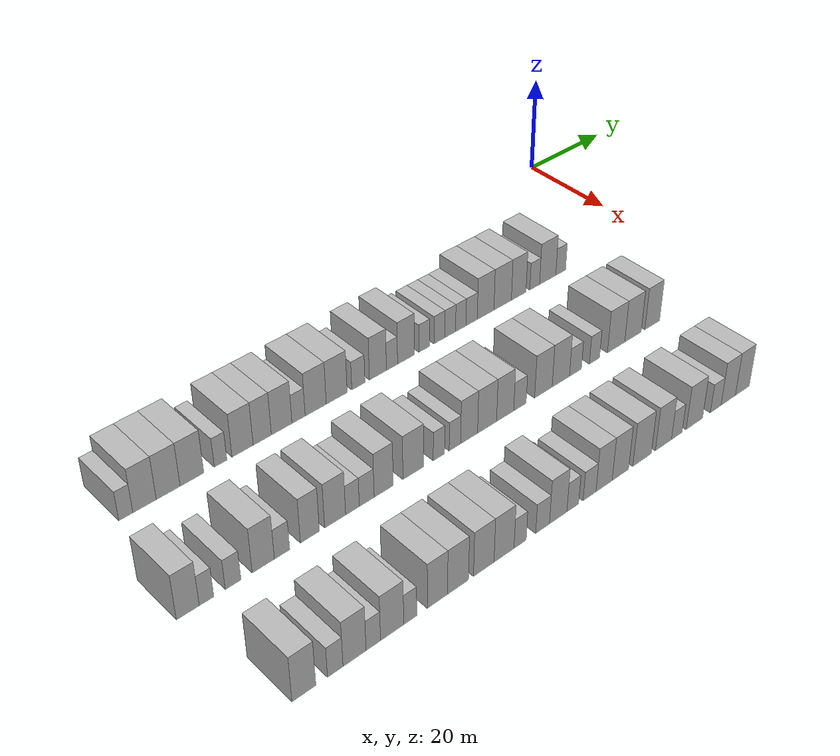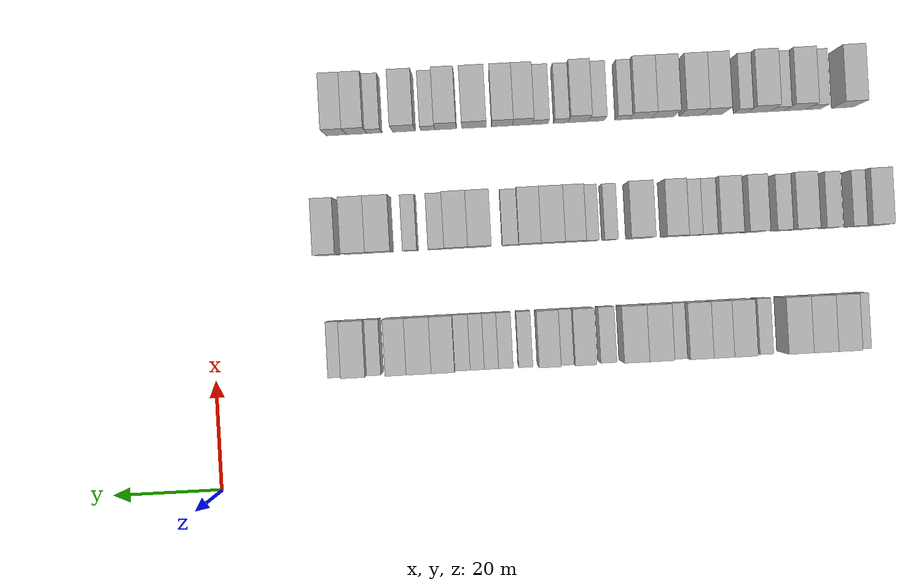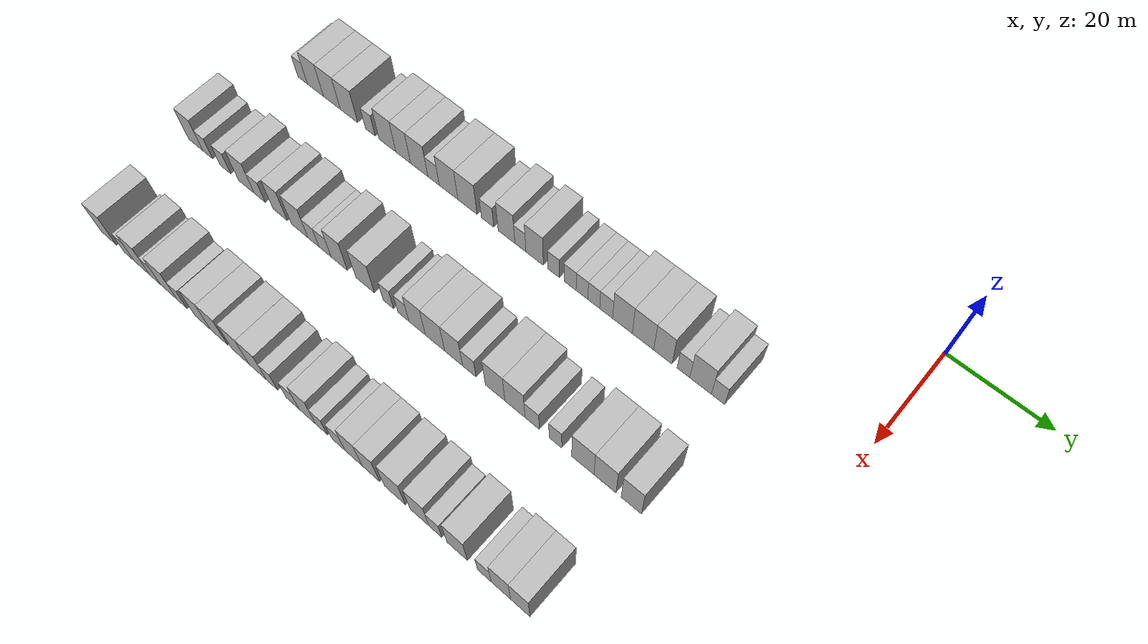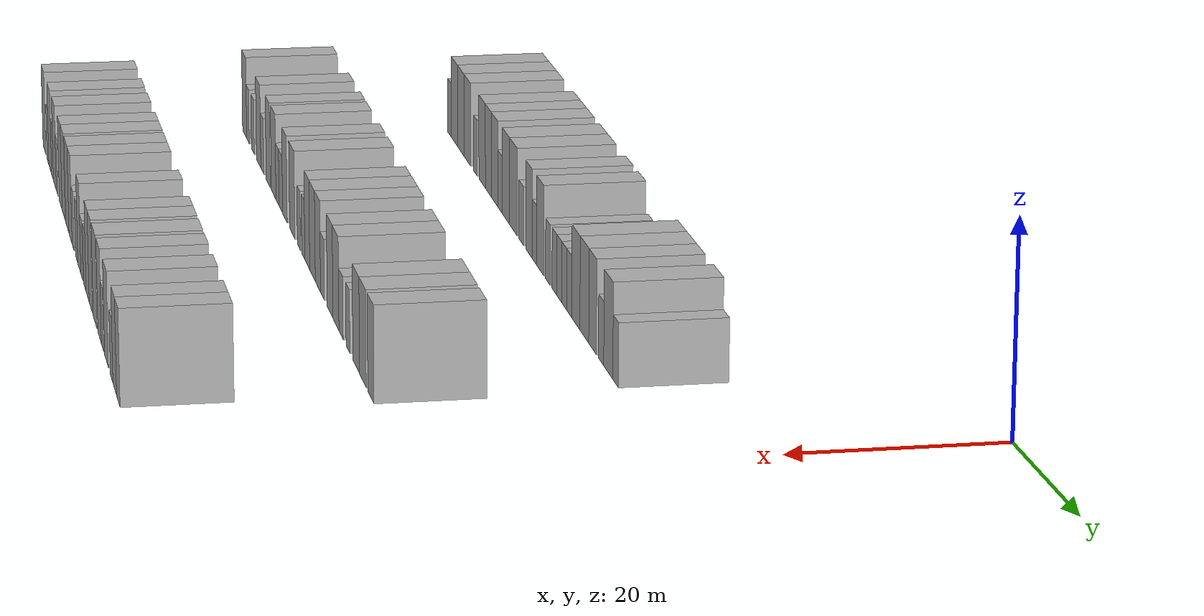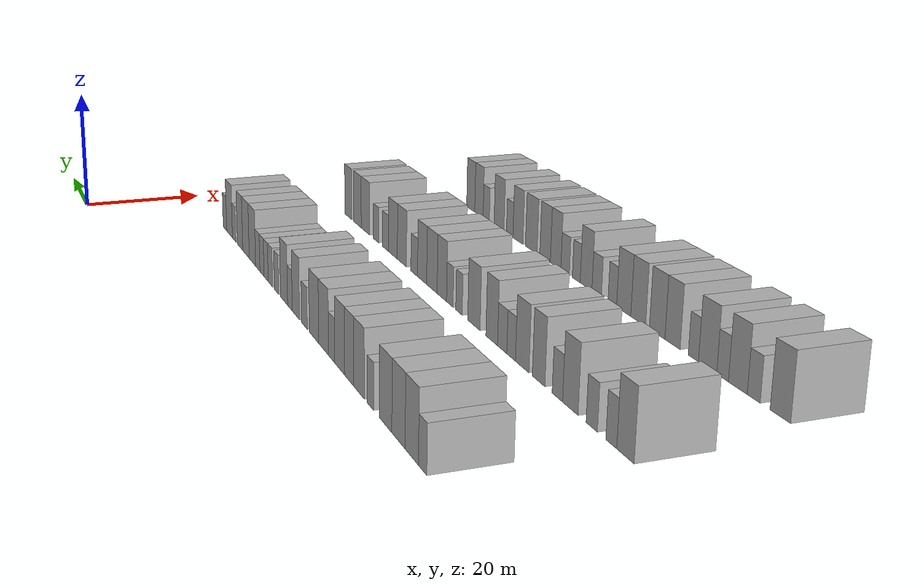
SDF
<sdf version="1.6">
 <world name="default">
  <model name="building_65">
   <static>1</static>
   <pose>25.0000 -117.4070 0 0.000000 0.000000 0.000000</pose>
   <link name="link">
    <pose>0 0 3.00 0 0 0</pose>
    <collision name="collision"><geometry><box><size>10.0000 2.4944 6.0000</size></box></geometry></collision>
    <visual name="visual">
     <cast_shadows>0</cast_shadows>
     <geometry><box><size>10.0000 2.4944 6.0000</size></box></geometry>
     <material>
      <script>
       <uri>model://HANNAS_wall/materials/scripts</uri>
       <uri>model://HANNAS_wall/materials/textures</uri>
       <name>vrc/HANNAS_wall</name>
      </script>
     </material>
    </visual>
   </link>
  </model>
  <model name="building_66">
   <static>1</static>
   <pose>25.0000 -114.0565 0 0.000000 0.000000 0.000000</pose>
   <link name="link">
    <pose>0 0 4.50 0 0 0</pose>
    <collision name="collision"><geometry><box><size>10.0000 4.2067 9.0000</size></box></geometry></collision>
    <visual name="visual">
     <cast_shadows>0</cast_shadows>
     <geometry><box><size>10.0000 4.2067 9.0000</size></box></geometry>
     <material>
      <script>
       <uri>model://HANNAS_wall/materials/scripts</uri>
       <uri>model://HANNAS_wall/materials/textures</uri>
       <name>vrc/HANNAS_wall</name>
      </script>
     </material>
    </visual>
   </link>
  </model>
  <model name="building_67">
   <static>1</static>
   <pose>25.0000 -109.7637 0 0.000000 0.000000 0.000000</pose>
   <link name="link">
    <pose>0 0 4.50 0 0 0</pose>
    <collision name="collision"><geometry><box><size>10.0000 4.3790 9.0000</size></box></geometry></collision>
    <visual name="visual">
     <cast_shadows>0</cast_shadows>
     <geometry><box><size>10.0000 4.3790 9.0000</size></box></geometry>
     <material>
      <script>
       <uri>model://HANNAS_wall/materials/scripts</uri>
       <uri>model://HANNAS_wall/materials/textures</uri>
       <name>vrc/HANNAS_wall</name>
      </script>
     </material>
    </visual>
   </link>
  </model>
  <model name="building_68">
   <static>1</static>
   <pose>25.0000 -105.3532 0 0.000000 0.000000 0.000000</pose>
   <link name="link">
    <pose>0 0 4.50 0 0 0</pose>
    <collision name="collision"><geometry><box><size>10.0000 4.4421 9.0000</size></box></geometry></collision>
    <visual name="visual">
     <cast_shadows>0</cast_shadows>
     <geometry><box><size>10.0000 4.4421 9.0000</size></box></geometry>
     <material>
      <script>
       <uri>model://HANNAS_wall/materials/scripts</uri>
       <uri>model://HANNAS_wall/materials/textures</uri>
       <name>vrc/HANNAS_wall</name>
      </script>
     </material>
    </visual>
   </link>
  </model>
  <model name="building_69">
   <static>1</static>
   <pose>25.0000 -99.9187 0 0.000000 0.000000 0.000000</pose>
   <link name="link">
    <pose>0 0 3.00 0 0 0</pose>
    <collision name="collision"><geometry><box><size>10.0000 2.4268 6.0000</size></box></geometry></collision>
    <visual name="visual">
     <cast_shadows>0</cast_shadows>
     <geometry><box><size>10.0000 2.4268 6.0000</size></box></geometry>
     <material>
      <script>
       <uri>model://HANNAS_wall/materials/scripts</uri>
       <uri>model://HANNAS_wall/materials/textures</uri>
       <name>vrc/HANNAS_wall</name>
      </script>
     </material>
    </visual>
   </link>
  </model>
  <model name="building_70">
   <static>1</static>
   <pose>25.0000 -95.6311 0 0.000000 0.000000 0.000000</pose>
   <link name="link">
    <pose>0 0 4.50 0 0 0</pose>
    <collision name="collision"><geometry><box><size>10.0000 4.1486 9.0000</size></box></geometry></collision>
    <visual name="visual">
     <cast_shadows>0</cast_shadows>
     <geometry><box><size>10.0000 4.1486 9.0000</size></box></geometry>
     <material>
      <script>
       <uri>model://HANNAS_wall/materials/scripts</uri>
       <uri>model://HANNAS_wall/materials/textures</uri>
       <name>vrc/HANNAS_wall</name>
      </script>
     </material>
    </visual>
   </link>
  </model>
  <model name="building_71">
   <static>1</static>
   <pose>25.0000 -91.7328 0 0.000000 0.000000 0.000000</pose>
   <link name="link">
    <pose>0 0 4.50 0 0 0</pose>
    <collision name="collision"><geometry><box><size>10.0000 3.6479 9.0000</size></box></geometry></collision>
    <visual name="visual">
     <cast_shadows>0</cast_shadows>
     <geometry><box><size>10.0000 3.6479 9.0000</size></box></geometry>
     <material>
      <script>
       <uri>model://HANNAS_wall/materials/scripts</uri>
       <uri>model://HANNAS_wall/materials/textures</uri>
       <name>vrc/HANNAS_wall</name>
      </script>
     </material>
    </visual>
   </link>
  </model>
  <model name="building_72">
   <static>1</static>
   <pose>25.0000 -87.8163 0 0.000000 0.000000 0.000000</pose>
   <link name="link">
    <pose>0 0 4.50 0 0 0</pose>
    <collision name="collision"><geometry><box><size>10.0000 4.1852 9.0000</size></box></geometry></collision>
    <visual name="visual">
     <cast_shadows>0</cast_shadows>
     <geometry><box><size>10.0000 4.1852 9.0000</size></box></geometry>
     <material>
      <script>
       <uri>model://HANNAS_wall/materials/scripts</uri>
       <uri>model://HANNAS_wall/materials/textures</uri>
       <name>vrc/HANNAS_wall</name>
      </script>
     </material>
    </visual>
   </link>
  </model>
  <model name="building_73">
   <static>1</static>
   <pose>25.0000 -84.3572 0 0.000000 0.000000 0.000000</pose>
   <link name="link">
    <pose>0 0 3.00 0 0 0</pose>
    <collision name="collision"><geometry><box><size>10.0000 2.7332 6.0000</size></box></geometry></collision>
    <visual name="visual">
     <cast_shadows>0</cast_shadows>
     <geometry><box><size>10.0000 2.7332 6.0000</size></box></geometry>
     <material>
      <script>
       <uri>model://HANNAS_wall/materials/scripts</uri>
       <uri>model://HANNAS_wall/materials/textures</uri>
       <name>vrc/HANNAS_wall</name>
      </script>
     </material>
    </visual>
   </link>
  </model>
  <model name="building_74">
   <static>1</static>
   <pose>25.0000 -80.7753 0 0.000000 0.000000 0.000000</pose>
   <link name="link">
    <pose>0 0 4.50 0 0 0</pose>
    <collision name="collision"><geometry><box><size>10.0000 4.4306 9.0000</size></box></geometry></collision>
    <visual name="visual">
     <cast_shadows>0</cast_shadows>
     <geometry><box><size>10.0000 4.4306 9.0000</size></box></geometry>
     <material>
      <script>
       <uri>model://HANNAS_wall/materials/scripts</uri>
       <uri>model://HANNAS_wall/materials/textures</uri>
       <name>vrc/HANNAS_wall</name>
      </script>
     </material>
    </visual>
   </link>
  </model>
  <model name="building_75">
   <static>1</static>
   <pose>25.0000 -76.3196 0 0.000000 0.000000 0.000000</pose>
   <link name="link">
    <pose>0 0 4.50 0 0 0</pose>
    <collision name="collision"><geometry><box><size>10.0000 4.4806 9.0000</size></box></geometry></collision>
    <visual name="visual">
     <cast_shadows>0</cast_shadows>
     <geometry><box><size>10.0000 4.4806 9.0000</size></box></geometry>
     <material>
      <script>
       <uri>model://HANNAS_wall/materials/scripts</uri>
       <uri>model://HANNAS_wall/materials/textures</uri>
       <name>vrc/HANNAS_wall</name>
      </script>
     </material>
    </visual>
   </link>
  </model>
  <model name="building_76">
   <static>1</static>
   <pose>25.0000 -71.6421 0 0.000000 0.000000 0.000000</pose>
   <link name="link">
    <pose>0 0 3.00 0 0 0</pose>
    <collision name="collision"><geometry><box><size>10.0000 2.8744 6.0000</size></box></geometry></collision>
    <visual name="visual">
     <cast_shadows>0</cast_shadows>
     <geometry><box><size>10.0000 2.8744 6.0000</size></box></geometry>
     <material>
      <script>
       <uri>model://HANNAS_wall/materials/scripts</uri>
       <uri>model://HANNAS_wall/materials/textures</uri>
       <name>vrc/HANNAS_wall</name>
      </script>
     </material>
    </visual>
   </link>
  </model>
  <model name="building_77">
   <static>1</static>
   <pose>25.0000 -67.3122 0 0.000000 0.000000 0.000000</pose>
   <link name="link">
    <pose>0 0 4.50 0 0 0</pose>
    <collision name="collision"><geometry><box><size>10.0000 3.7854 9.0000</size></box></geometry></collision>
    <visual name="visual">
     <cast_shadows>0</cast_shadows>
     <geometry><box><size>10.0000 3.7854 9.0000</size></box></geometry>
     <material>
      <script>
       <uri>model://HANNAS_wall/materials/scripts</uri>
       <uri>model://HANNAS_wall/materials/textures</uri>
       <name>vrc/HANNAS_wall</name>
      </script>
     </material>
    </visual>
   </link>
  </model>
  <model name="building_78">
   <static>1</static>
   <pose>25.0000 -64.1661 0 0.000000 0.000000 0.000000</pose>
   <link name="link">
    <pose>0 0 3.00 0 0 0</pose>
    <collision name="collision"><geometry><box><size>10.0000 2.5068 6.0000</size></box></geometry></collision>
    <visual name="visual">
     <cast_shadows>0</cast_shadows>
     <geometry><box><size>10.0000 2.5068 6.0000</size></box></geometry>
     <material>
      <script>
       <uri>model://HANNAS_wall/materials/scripts</uri>
       <uri>model://HANNAS_wall/materials/textures</uri>
       <name>vrc/HANNAS_wall</name>
      </script>
     </material>
    </visual>
   </link>
  </model>
  <model name="building_79">
   <static>1</static>
   <pose>25.0000 -60.9685 0 0.000000 0.000000 0.000000</pose>
   <link name="link">
    <pose>0 0 4.50 0 0 0</pose>
    <collision name="collision"><geometry><box><size>10.0000 3.8885 9.0000</size></box></geometry></collision>
    <visual name="visual">
     <cast_shadows>0</cast_shadows>
     <geometry><box><size>10.0000 3.8885 9.0000</size></box></geometry>
     <material>
      <script>
       <uri>model://HANNAS_wall/materials/scripts</uri>
       <uri>model://HANNAS_wall/materials/textures</uri>
       <name>vrc/HANNAS_wall</name>
      </script>
     </material>
    </visual>
   </link>
  </model>
  <model name="building_80">
   <static>1</static>
   <pose>25.0000 -56.7619 0 0.000000 0.000000 0.000000</pose>
   <link name="link">
    <pose>0 0 3.00 0 0 0</pose>
    <collision name="collision"><geometry><box><size>10.0000 2.5249 6.0000</size></box></geometry></collision>
    <visual name="visual">
     <cast_shadows>0</cast_shadows>
     <geometry><box><size>10.0000 2.5249 6.0000</size></box></geometry>
     <material>
      <script>
       <uri>model://HANNAS_wall/materials/scripts</uri>
       <uri>model://HANNAS_wall/materials/textures</uri>
       <name>vrc/HANNAS_wall</name>
      </script>
     </material>
    </visual>
   </link>
  </model>
  <model name="building_81">
   <static>1</static>
   <pose>25.0000 -53.1876 0 0.000000 0.000000 0.000000</pose>
   <link name="link">
    <pose>0 0 3.00 0 0 0</pose>
    <collision name="collision"><geometry><box><size>10.0000 2.6238 6.0000</size></box></geometry></collision>
    <visual name="visual">
     <cast_shadows>0</cast_shadows>
     <geometry><box><size>10.0000 2.6238 6.0000</size></box></geometry>
     <material>
      <script>
       <uri>model://HANNAS_wall/materials/scripts</uri>
       <uri>model://HANNAS_wall/materials/textures</uri>
       <name>vrc/HANNAS_wall</name>
      </script>
     </material>
    </visual>
   </link>
  </model>
  <model name="building_82">
   <static>1</static>
   <pose>25.0000 -50.6064 0 0.000000 0.000000 0.000000</pose>
   <link name="link">
    <pose>0 0 3.00 0 0 0</pose>
    <collision name="collision"><geometry><box><size>10.0000 2.5385 6.0000</size></box></geometry></collision>
    <visual name="visual">
     <cast_shadows>0</cast_shadows>
     <geometry><box><size>10.0000 2.5385 6.0000</size></box></geometry>
     <material>
      <script>
       <uri>model://HANNAS_wall/materials/scripts</uri>
       <uri>model://HANNAS_wall/materials/textures</uri>
       <name>vrc/HANNAS_wall</name>
      </script>
     </material>
    </visual>
   </link>
  </model>
  <model name="building_83">
   <static>1</static>
   <pose>25.0000 -48.0749 0 0.000000 0.000000 0.000000</pose>
   <link name="link">
    <pose>0 0 3.00 0 0 0</pose>
    <collision name="collision"><geometry><box><size>10.0000 2.5245 6.0000</size></box></geometry></collision>
    <visual name="visual">
     <cast_shadows>0</cast_shadows>
     <geometry><box><size>10.0000 2.5245 6.0000</size></box></geometry>
     <material>
      <script>
       <uri>model://HANNAS_wall/materials/scripts</uri>
       <uri>model://HANNAS_wall/materials/textures</uri>
       <name>vrc/HANNAS_wall</name>
      </script>
     </material>
    </visual>
   </link>
  </model>
  <model name="building_84">
   <static>1</static>
   <pose>25.0000 -45.4405 0 0.000000 0.000000 0.000000</pose>
   <link name="link">
    <pose>0 0 3.00 0 0 0</pose>
    <collision name="collision"><geometry><box><size>10.0000 2.7445 6.0000</size></box></geometry></collision>
    <visual name="visual">
     <cast_shadows>0</cast_shadows>
     <geometry><box><size>10.0000 2.7445 6.0000</size></box></geometry>
     <material>
      <script>
       <uri>model://HANNAS_wall/materials/scripts</uri>
       <uri>model://HANNAS_wall/materials/textures</uri>
       <name>vrc/HANNAS_wall</name>
      </script>
     </material>
    </visual>
   </link>
  </model>
  <model name="building_85">
   <static>1</static>
   <pose>25.0000 -42.0041 0 0.000000 0.000000 0.000000</pose>
   <link name="link">
    <pose>0 0 4.50 0 0 0</pose>
    <collision name="collision"><geometry><box><size>10.0000 4.1282 9.0000</size></box></geometry></collision>
    <visual name="visual">
     <cast_shadows>0</cast_shadows>
     <geometry><box><size>10.0000 4.1282 9.0000</size></box></geometry>
     <material>
      <script>
       <uri>model://HANNAS_wall/materials/scripts</uri>
       <uri>model://HANNAS_wall/materials/textures</uri>
       <name>vrc/HANNAS_wall</name>
      </script>
     </material>
    </visual>
   </link>
  </model>
  <model name="building_86">
   <static>1</static>
   <pose>25.0000 -37.7341 0 0.000000 0.000000 0.000000</pose>
   <link name="link">
    <pose>0 0 4.50 0 0 0</pose>
    <collision name="collision"><geometry><box><size>10.0000 4.4119 9.0000</size></box></geometry></collision>
    <visual name="visual">
     <cast_shadows>0</cast_shadows>
     <geometry><box><size>10.0000 4.4119 9.0000</size></box></geometry>
     <material>
      <script>
       <uri>model://HANNAS_wall/materials/scripts</uri>
       <uri>model://HANNAS_wall/materials/textures</uri>
       <name>vrc/HANNAS_wall</name>
      </script>
     </material>
    </visual>
   </link>
  </model>
  <model name="building_87">
   <static>1</static>
   <pose>25.0000 -33.6556 0 0.000000 0.000000 0.000000</pose>
   <link name="link">
    <pose>0 0 4.50 0 0 0</pose>
    <collision name="collision"><geometry><box><size>10.0000 3.7452 9.0000</size></box></geometry></collision>
    <visual name="visual">
     <cast_shadows>0</cast_shadows>
     <geometry><box><size>10.0000 3.7452 9.0000</size></box></geometry>
     <material>
      <script>
       <uri>model://HANNAS_wall/materials/scripts</uri>
       <uri>model://HANNAS_wall/materials/textures</uri>
       <name>vrc/HANNAS_wall</name>
      </script>
     </material>
    </visual>
   </link>
  </model>
  <model name="building_88">
   <static>1</static>
   <pose>25.0000 -29.5112 0 0.000000 0.000000 0.000000</pose>
   <link name="link">
    <pose>0 0 3.00 0 0 0</pose>
    <collision name="collision"><geometry><box><size>10.0000 2.5435 6.0000</size></box></geometry></collision>
    <visual name="visual">
     <cast_shadows>0</cast_shadows>
     <geometry><box><size>10.0000 2.5435 6.0000</size></box></geometry>
     <material>
      <script>
       <uri>model://HANNAS_wall/materials/scripts</uri>
       <uri>model://HANNAS_wall/materials/textures</uri>
       <name>vrc/HANNAS_wall</name>
      </script>
     </material>
    </visual>
   </link>
  </model>
  <model name="building_89">
   <static>1</static>
   <pose>25.0000 -26.0867 0 0.000000 0.000000 0.000000</pose>
   <link name="link">
    <pose>0 0 4.50 0 0 0</pose>
    <collision name="collision"><geometry><box><size>10.0000 4.3057 9.0000</size></box></geometry></collision>
    <visual name="visual">
     <cast_shadows>0</cast_shadows>
     <geometry><box><size>10.0000 4.3057 9.0000</size></box></geometry>
     <material>
      <script>
       <uri>model://HANNAS_wall/materials/scripts</uri>
       <uri>model://HANNAS_wall/materials/textures</uri>
       <name>vrc/HANNAS_wall</name>
      </script>
     </material>
    </visual>
   </link>
  </model>
  <model name="building_90">
   <static>1</static>
   <pose>25.0000 -22.6231 0 0.000000 0.000000 0.000000</pose>
   <link name="link">
    <pose>0 0 3.00 0 0 0</pose>
    <collision name="collision"><geometry><box><size>10.0000 2.6215 6.0000</size></box></geometry></collision>
    <visual name="visual">
     <cast_shadows>0</cast_shadows>
     <geometry><box><size>10.0000 2.6215 6.0000</size></box></geometry>
     <material>
      <script>
       <uri>model://HANNAS_wall/materials/scripts</uri>
       <uri>model://HANNAS_wall/materials/textures</uri>
       <name>vrc/HANNAS_wall</name>
      </script>
     </material>
    </visual>
   </link>
  </model>
  <model name="building_252">
   <static>1</static>
   <pose>47.0000 -121.1658 0 0.000000 0.000000 0.000000</pose>
   <link name="link">
    <pose>0 0 4.50 0 0 0</pose>
    <collision name="collision"><geometry><box><size>10.0000 3.8850 9.0000</size></box></geometry></collision>
    <visual name="visual">
     <cast_shadows>0</cast_shadows>
     <geometry><box><size>10.0000 3.8850 9.0000</size></box></geometry>
     <material>
      <script>
       <uri>model://HANNAS_wall/materials/scripts</uri>
       <uri>model://HANNAS_wall/materials/textures</uri>
       <name>vrc/HANNAS_wall</name>
      </script>
     </material>
    </visual>
   </link>
  </model>
  <model name="building_253">
   <static>1</static>
   <pose>47.0000 -117.9712 0 0.000000 0.000000 0.000000</pose>
   <link name="link">
    <pose>0 0 3.00 0 0 0</pose>
    <collision name="collision"><geometry><box><size>10.0000 2.5043 6.0000</size></box></geometry></collision>
    <visual name="visual">
     <cast_shadows>0</cast_shadows>
     <geometry><box><size>10.0000 2.5043 6.0000</size></box></geometry>
     <material>
      <script>
       <uri>model://HANNAS_wall/materials/scripts</uri>
       <uri>model://HANNAS_wall/materials/textures</uri>
       <name>vrc/HANNAS_wall</name>
      </script>
     </material>
    </visual>
   </link>
  </model>
  <model name="building_254">
   <static>1</static>
   <pose>47.0000 -113.3325 0 0.000000 0.000000 0.000000</pose>
   <link name="link">
    <pose>0 0 3.00 0 0 0</pose>
    <collision name="collision"><geometry><box><size>10.0000 2.7731 6.0000</size></box></geometry></collision>
    <visual name="visual">
     <cast_shadows>0</cast_shadows>
     <geometry><box><size>10.0000 2.7731 6.0000</size></box></geometry>
     <material>
      <script>
       <uri>model://HANNAS_wall/materials/scripts</uri>
       <uri>model://HANNAS_wall/materials/textures</uri>
       <name>vrc/HANNAS_wall</name>
      </script>
     </material>
    </visual>
   </link>
  </model>
  <model name="building_255">
   <static>1</static>
   <pose>47.0000 -107.9290 0 0.000000 0.000000 0.000000</pose>
   <link name="link">
    <pose>0 0 4.50 0 0 0</pose>
    <collision name="collision"><geometry><box><size>10.0000 4.0341 9.0000</size></box></geometry></collision>
    <visual name="visual">
     <cast_shadows>0</cast_shadows>
     <geometry><box><size>10.0000 4.0341 9.0000</size></box></geometry>
     <material>
      <script>
       <uri>model://HANNAS_wall/materials/scripts</uri>
       <uri>model://HANNAS_wall/materials/textures</uri>
       <name>vrc/HANNAS_wall</name>
      </script>
     </material>
    </visual>
   </link>
  </model>
  <model name="building_256">
   <static>1</static>
   <pose>47.0000 -104.5029 0 0.000000 0.000000 0.000000</pose>
   <link name="link">
    <pose>0 0 3.00 0 0 0</pose>
    <collision name="collision"><geometry><box><size>10.0000 2.8180 6.0000</size></box></geometry></collision>
    <visual name="visual">
     <cast_shadows>0</cast_shadows>
     <geometry><box><size>10.0000 2.8180 6.0000</size></box></geometry>
     <material>
      <script>
       <uri>model://HANNAS_wall/materials/scripts</uri>
       <uri>model://HANNAS_wall/materials/textures</uri>
       <name>vrc/HANNAS_wall</name>
      </script>
     </material>
    </visual>
   </link>
  </model>
  <model name="building_257">
   <static>1</static>
   <pose>47.0000 -99.2927 0 0.000000 0.000000 0.000000</pose>
   <link name="link">
    <pose>0 0 4.50 0 0 0</pose>
    <collision name="collision"><geometry><box><size>10.0000 3.6026 9.0000</size></box></geometry></collision>
    <visual name="visual">
     <cast_shadows>0</cast_shadows>
     <geometry><box><size>10.0000 3.6026 9.0000</size></box></geometry>
     <material>
      <script>
       <uri>model://HANNAS_wall/materials/scripts</uri>
       <uri>model://HANNAS_wall/materials/textures</uri>
       <name>vrc/HANNAS_wall</name>
      </script>
     </material>
    </visual>
   </link>
  </model>
  <model name="building_258">
   <static>1</static>
   <pose>47.0000 -94.4581 0 0.000000 0.000000 0.000000</pose>
   <link name="link">
    <pose>0 0 4.50 0 0 0</pose>
    <collision name="collision"><geometry><box><size>10.0000 4.0667 9.0000</size></box></geometry></collision>
    <visual name="visual">
     <cast_shadows>0</cast_shadows>
     <geometry><box><size>10.0000 4.0667 9.0000</size></box></geometry>
     <material>
      <script>
       <uri>model://HANNAS_wall/materials/scripts</uri>
       <uri>model://HANNAS_wall/materials/textures</uri>
       <name>vrc/HANNAS_wall</name>
      </script>
     </material>
    </visual>
   </link>
  </model>
  <model name="building_259">
   <static>1</static>
   <pose>47.0000 -91.0736 0 0.000000 0.000000 0.000000</pose>
   <link name="link">
    <pose>0 0 3.00 0 0 0</pose>
    <collision name="collision"><geometry><box><size>10.0000 2.7022 6.0000</size></box></geometry></collision>
    <visual name="visual">
     <cast_shadows>0</cast_shadows>
     <geometry><box><size>10.0000 2.7022 6.0000</size></box></geometry>
     <material>
      <script>
       <uri>model://HANNAS_wall/materials/scripts</uri>
       <uri>model://HANNAS_wall/materials/textures</uri>
       <name>vrc/HANNAS_wall</name>
      </script>
     </material>
    </visual>
   </link>
  </model>
  <model name="building_260">
   <static>1</static>
   <pose>47.0000 -88.2400 0 0.000000 0.000000 0.000000</pose>
   <link name="link">
    <pose>0 0 3.00 0 0 0</pose>
    <collision name="collision"><geometry><box><size>10.0000 2.9651 6.0000</size></box></geometry></collision>
    <visual name="visual">
     <cast_shadows>0</cast_shadows>
     <geometry><box><size>10.0000 2.9651 6.0000</size></box></geometry>
     <material>
      <script>
       <uri>model://HANNAS_wall/materials/scripts</uri>
       <uri>model://HANNAS_wall/materials/textures</uri>
       <name>vrc/HANNAS_wall</name>
      </script>
     </material>
    </visual>
   </link>
  </model>
  <model name="building_261">
   <static>1</static>
   <pose>47.0000 -84.8199 0 0.000000 0.000000 0.000000</pose>
   <link name="link">
    <pose>0 0 4.50 0 0 0</pose>
    <collision name="collision"><geometry><box><size>10.0000 3.8750 9.0000</size></box></geometry></collision>
    <visual name="visual">
     <cast_shadows>0</cast_shadows>
     <geometry><box><size>10.0000 3.8750 9.0000</size></box></geometry>
     <material>
      <script>
       <uri>model://HANNAS_wall/materials/scripts</uri>
       <uri>model://HANNAS_wall/materials/textures</uri>
       <name>vrc/HANNAS_wall</name>
      </script>
     </material>
    </visual>
   </link>
  </model>
  <model name="building_262">
   <static>1</static>
   <pose>47.0000 -78.7033 0 0.000000 0.000000 0.000000</pose>
   <link name="link">
    <pose>0 0 4.50 0 0 0</pose>
    <collision name="collision"><geometry><box><size>10.0000 4.3582 9.0000</size></box></geometry></collision>
    <visual name="visual">
     <cast_shadows>0</cast_shadows>
     <geometry><box><size>10.0000 4.3582 9.0000</size></box></geometry>
     <material>
      <script>
       <uri>model://HANNAS_wall/materials/scripts</uri>
       <uri>model://HANNAS_wall/materials/textures</uri>
       <name>vrc/HANNAS_wall</name>
      </script>
     </material>
    </visual>
   </link>
  </model>
  <model name="building_263">
   <static>1</static>
   <pose>47.0000 -73.3132 0 0.000000 0.000000 0.000000</pose>
   <link name="link">
    <pose>0 0 3.00 0 0 0</pose>
    <collision name="collision"><geometry><box><size>10.0000 2.4219 6.0000</size></box></geometry></collision>
    <visual name="visual">
     <cast_shadows>0</cast_shadows>
     <geometry><box><size>10.0000 2.4219 6.0000</size></box></geometry>
     <material>
      <script>
       <uri>model://HANNAS_wall/materials/scripts</uri>
       <uri>model://HANNAS_wall/materials/textures</uri>
       <name>vrc/HANNAS_wall</name>
      </script>
     </material>
    </visual>
   </link>
  </model>
  <model name="building_264">
   <static>1</static>
   <pose>47.0000 -69.8483 0 0.000000 0.000000 0.000000</pose>
   <link name="link">
    <pose>0 0 3.00 0 0 0</pose>
    <collision name="collision"><geometry><box><size>10.0000 2.5080 6.0000</size></box></geometry></collision>
    <visual name="visual">
     <cast_shadows>0</cast_shadows>
     <geometry><box><size>10.0000 2.5080 6.0000</size></box></geometry>
     <material>
      <script>
       <uri>model://HANNAS_wall/materials/scripts</uri>
       <uri>model://HANNAS_wall/materials/textures</uri>
       <name>vrc/HANNAS_wall</name>
      </script>
     </material>
    </visual>
   </link>
  </model>
  <model name="building_265">
   <static>1</static>
   <pose>47.0000 -66.7271 0 0.000000 0.000000 0.000000</pose>
   <link name="link">
    <pose>0 0 4.50 0 0 0</pose>
    <collision name="collision"><geometry><box><size>10.0000 3.7342 9.0000</size></box></geometry></collision>
    <visual name="visual">
     <cast_shadows>0</cast_shadows>
     <geometry><box><size>10.0000 3.7342 9.0000</size></box></geometry>
     <material>
      <script>
       <uri>model://HANNAS_wall/materials/scripts</uri>
       <uri>model://HANNAS_wall/materials/textures</uri>
       <name>vrc/HANNAS_wall</name>
      </script>
     </material>
    </visual>
   </link>
  </model>
  <model name="building_266">
   <static>1</static>
   <pose>47.0000 -62.7202 0 0.000000 0.000000 0.000000</pose>
   <link name="link">
    <pose>0 0 4.50 0 0 0</pose>
    <collision name="collision"><geometry><box><size>10.0000 4.2797 9.0000</size></box></geometry></collision>
    <visual name="visual">
     <cast_shadows>0</cast_shadows>
     <geometry><box><size>10.0000 4.2797 9.0000</size></box></geometry>
     <material>
      <script>
       <uri>model://HANNAS_wall/materials/scripts</uri>
       <uri>model://HANNAS_wall/materials/textures</uri>
       <name>vrc/HANNAS_wall</name>
      </script>
     </material>
    </visual>
   </link>
  </model>
  <model name="building_267">
   <static>1</static>
   <pose>47.0000 -58.6174 0 0.000000 0.000000 0.000000</pose>
   <link name="link">
    <pose>0 0 4.50 0 0 0</pose>
    <collision name="collision"><geometry><box><size>10.0000 3.9260 9.0000</size></box></geometry></collision>
    <visual name="visual">
     <cast_shadows>0</cast_shadows>
     <geometry><box><size>10.0000 3.9260 9.0000</size></box></geometry>
     <material>
      <script>
       <uri>model://HANNAS_wall/materials/scripts</uri>
       <uri>model://HANNAS_wall/materials/textures</uri>
       <name>vrc/HANNAS_wall</name>
      </script>
     </material>
    </visual>
   </link>
  </model>
  <model name="building_268">
   <static>1</static>
   <pose>47.0000 -55.2061 0 0.000000 0.000000 0.000000</pose>
   <link name="link">
    <pose>0 0 3.00 0 0 0</pose>
    <collision name="collision"><geometry><box><size>10.0000 2.8966 6.0000</size></box></geometry></collision>
    <visual name="visual">
     <cast_shadows>0</cast_shadows>
     <geometry><box><size>10.0000 2.8966 6.0000</size></box></geometry>
     <material>
      <script>
       <uri>model://HANNAS_wall/materials/scripts</uri>
       <uri>model://HANNAS_wall/materials/textures</uri>
       <name>vrc/HANNAS_wall</name>
      </script>
     </material>
    </visual>
   </link>
  </model>
  <model name="building_269">
   <static>1</static>
   <pose>47.0000 -49.6643 0 0.000000 0.000000 0.000000</pose>
   <link name="link">
    <pose>0 0 4.50 0 0 0</pose>
    <collision name="collision"><geometry><box><size>10.0000 4.1870 9.0000</size></box></geometry></collision>
    <visual name="visual">
     <cast_shadows>0</cast_shadows>
     <geometry><box><size>10.0000 4.1870 9.0000</size></box></geometry>
     <material>
      <script>
       <uri>model://HANNAS_wall/materials/scripts</uri>
       <uri>model://HANNAS_wall/materials/textures</uri>
       <name>vrc/HANNAS_wall</name>
      </script>
     </material>
    </visual>
   </link>
  </model>
  <model name="building_270">
   <static>1</static>
   <pose>47.0000 -45.4655 0 0.000000 0.000000 0.000000</pose>
   <link name="link">
    <pose>0 0 4.50 0 0 0</pose>
    <collision name="collision"><geometry><box><size>10.0000 4.2106 9.0000</size></box></geometry></collision>
    <visual name="visual">
     <cast_shadows>0</cast_shadows>
     <geometry><box><size>10.0000 4.2106 9.0000</size></box></geometry>
     <material>
      <script>
       <uri>model://HANNAS_wall/materials/scripts</uri>
       <uri>model://HANNAS_wall/materials/textures</uri>
       <name>vrc/HANNAS_wall</name>
      </script>
     </material>
    </visual>
   </link>
  </model>
  <model name="building_271">
   <static>1</static>
   <pose>47.0000 -41.8831 0 0.000000 0.000000 0.000000</pose>
   <link name="link">
    <pose>0 0 3.00 0 0 0</pose>
    <collision name="collision"><geometry><box><size>10.0000 2.9542 6.0000</size></box></geometry></collision>
    <visual name="visual">
     <cast_shadows>0</cast_shadows>
     <geometry><box><size>10.0000 2.9542 6.0000</size></box></geometry>
     <material>
      <script>
       <uri>model://HANNAS_wall/materials/scripts</uri>
       <uri>model://HANNAS_wall/materials/textures</uri>
       <name>vrc/HANNAS_wall</name>
      </script>
     </material>
    </visual>
   </link>
  </model>
  <model name="building_272">
   <static>1</static>
   <pose>47.0000 -37.1157 0 0.000000 0.000000 0.000000</pose>
   <link name="link">
    <pose>0 0 3.00 0 0 0</pose>
    <collision name="collision"><geometry><box><size>10.0000 2.5807 6.0000</size></box></geometry></collision>
    <visual name="visual">
     <cast_shadows>0</cast_shadows>
     <geometry><box><size>10.0000 2.5807 6.0000</size></box></geometry>
     <material>
      <script>
       <uri>model://HANNAS_wall/materials/scripts</uri>
       <uri>model://HANNAS_wall/materials/textures</uri>
       <name>vrc/HANNAS_wall</name>
      </script>
     </material>
    </visual>
   </link>
  </model>
  <model name="building_273">
   <static>1</static>
   <pose>47.0000 -31.5942 0 0.000000 0.000000 0.000000</pose>
   <link name="link">
    <pose>0 0 4.50 0 0 0</pose>
    <collision name="collision"><geometry><box><size>10.0000 4.4625 9.0000</size></box></geometry></collision>
    <visual name="visual">
     <cast_shadows>0</cast_shadows>
     <geometry><box><size>10.0000 4.4625 9.0000</size></box></geometry>
     <material>
      <script>
       <uri>model://HANNAS_wall/materials/scripts</uri>
       <uri>model://HANNAS_wall/materials/textures</uri>
       <name>vrc/HANNAS_wall</name>
      </script>
     </material>
    </visual>
   </link>
  </model>
  <model name="building_274">
   <static>1</static>
   <pose>47.0000 -27.2048 0 0.000000 0.000000 0.000000</pose>
   <link name="link">
    <pose>0 0 4.50 0 0 0</pose>
    <collision name="collision"><geometry><box><size>10.0000 4.3163 9.0000</size></box></geometry></collision>
    <visual name="visual">
     <cast_shadows>0</cast_shadows>
     <geometry><box><size>10.0000 4.3163 9.0000</size></box></geometry>
     <material>
      <script>
       <uri>model://HANNAS_wall/materials/scripts</uri>
       <uri>model://HANNAS_wall/materials/textures</uri>
       <name>vrc/HANNAS_wall</name>
      </script>
     </material>
    </visual>
   </link>
  </model>
  <model name="building_275">
   <static>1</static>
   <pose>47.0000 -22.0799 0 0.000000 0.000000 0.000000</pose>
   <link name="link">
    <pose>0 0 4.50 0 0 0</pose>
    <collision name="collision"><geometry><box><size>10.0000 3.9335 9.0000</size></box></geometry></collision>
    <visual name="visual">
     <cast_shadows>0</cast_shadows>
     <geometry><box><size>10.0000 3.9335 9.0000</size></box></geometry>
     <material>
      <script>
       <uri>model://HANNAS_wall/materials/scripts</uri>
       <uri>model://HANNAS_wall/materials/textures</uri>
       <name>vrc/HANNAS_wall</name>
      </script>
     </material>
    </visual>
   </link>
  </model>
  <model name="building_429">
   <static>1</static>
   <pose>69.0000 -117.6082 0 0.000000 0.000000 0.000000</pose>
   <link name="link">
    <pose>0 0 4.50 0 0 0</pose>
    <collision name="collision"><geometry><box><size>10.0000 4.0352 9.0000</size></box></geometry></collision>
    <visual name="visual">
     <cast_shadows>0</cast_shadows>
     <geometry><box><size>10.0000 4.0352 9.0000</size></box></geometry>
     <material>
      <script>
       <uri>model://HANNAS_wall/materials/scripts</uri>
       <uri>model://HANNAS_wall/materials/textures</uri>
       <name>vrc/HANNAS_wall</name>
      </script>
     </material>
    </visual>
   </link>
  </model>
  <model name="building_430">
   <static>1</static>
   <pose>69.0000 -112.2408 0 0.000000 0.000000 0.000000</pose>
   <link name="link">
    <pose>0 0 3.00 0 0 0</pose>
    <collision name="collision"><geometry><box><size>10.0000 2.6996 6.0000</size></box></geometry></collision>
    <visual name="visual">
     <cast_shadows>0</cast_shadows>
     <geometry><box><size>10.0000 2.6996 6.0000</size></box></geometry>
     <material>
      <script>
       <uri>model://HANNAS_wall/materials/scripts</uri>
       <uri>model://HANNAS_wall/materials/textures</uri>
       <name>vrc/HANNAS_wall</name>
      </script>
     </material>
    </visual>
   </link>
  </model>
  <model name="building_431">
   <static>1</static>
   <pose>69.0000 -108.8521 0 0.000000 0.000000 0.000000</pose>
   <link name="link">
    <pose>0 0 4.50 0 0 0</pose>
    <collision name="collision"><geometry><box><size>10.0000 4.0777 9.0000</size></box></geometry></collision>
    <visual name="visual">
     <cast_shadows>0</cast_shadows>
     <geometry><box><size>10.0000 4.0777 9.0000</size></box></geometry>
     <material>
      <script>
       <uri>model://HANNAS_wall/materials/scripts</uri>
       <uri>model://HANNAS_wall/materials/textures</uri>
       <name>vrc/HANNAS_wall</name>
      </script>
     </material>
    </visual>
   </link>
  </model>
  <model name="building_432">
   <static>1</static>
   <pose>69.0000 -105.5105 0 0.000000 0.000000 0.000000</pose>
   <link name="link">
    <pose>0 0 3.00 0 0 0</pose>
    <collision name="collision"><geometry><box><size>10.0000 2.6056 6.0000</size></box></geometry></collision>
    <visual name="visual">
     <cast_shadows>0</cast_shadows>
     <geometry><box><size>10.0000 2.6056 6.0000</size></box></geometry>
     <material>
      <script>
       <uri>model://HANNAS_wall/materials/scripts</uri>
       <uri>model://HANNAS_wall/materials/textures</uri>
       <name>vrc/HANNAS_wall</name>
      </script>
     </material>
    </visual>
   </link>
  </model>
  <model name="building_433">
   <static>1</static>
   <pose>69.0000 -102.0788 0 0.000000 0.000000 0.000000</pose>
   <link name="link">
    <pose>0 0 4.50 0 0 0</pose>
    <collision name="collision"><geometry><box><size>10.0000 4.2577 9.0000</size></box></geometry></collision>
    <visual name="visual">
     <cast_shadows>0</cast_shadows>
     <geometry><box><size>10.0000 4.2577 9.0000</size></box></geometry>
     <material>
      <script>
       <uri>model://HANNAS_wall/materials/scripts</uri>
       <uri>model://HANNAS_wall/materials/textures</uri>
       <name>vrc/HANNAS_wall</name>
      </script>
     </material>
    </visual>
   </link>
  </model>
  <model name="building_434">
   <static>1</static>
   <pose>69.0000 -98.7304 0 0.000000 0.000000 0.000000</pose>
   <link name="link">
    <pose>0 0 3.00 0 0 0</pose>
    <collision name="collision"><geometry><box><size>10.0000 2.4391 6.0000</size></box></geometry></collision>
    <visual name="visual">
     <cast_shadows>0</cast_shadows>
     <geometry><box><size>10.0000 2.4391 6.0000</size></box></geometry>
     <material>
      <script>
       <uri>model://HANNAS_wall/materials/scripts</uri>
       <uri>model://HANNAS_wall/materials/textures</uri>
       <name>vrc/HANNAS_wall</name>
      </script>
     </material>
    </visual>
   </link>
  </model>
  <model name="building_435">
   <static>1</static>
   <pose>69.0000 -93.5730 0 0.000000 0.000000 0.000000</pose>
   <link name="link">
    <pose>0 0 4.50 0 0 0</pose>
    <collision name="collision"><geometry><box><size>10.0000 3.8757 9.0000</size></box></geometry></collision>
    <visual name="visual">
     <cast_shadows>0</cast_shadows>
     <geometry><box><size>10.0000 3.8757 9.0000</size></box></geometry>
     <material>
      <script>
       <uri>model://HANNAS_wall/materials/scripts</uri>
       <uri>model://HANNAS_wall/materials/textures</uri>
       <name>vrc/HANNAS_wall</name>
      </script>
     </material>
    </visual>
   </link>
  </model>
  <model name="building_436">
   <static>1</static>
   <pose>69.0000 -89.5827 0 0.000000 0.000000 0.000000</pose>
   <link name="link">
    <pose>0 0 4.50 0 0 0</pose>
    <collision name="collision"><geometry><box><size>10.0000 4.1049 9.0000</size></box></geometry></collision>
    <visual name="visual">
     <cast_shadows>0</cast_shadows>
     <geometry><box><size>10.0000 4.1049 9.0000</size></box></geometry>
     <material>
      <script>
       <uri>model://HANNAS_wall/materials/scripts</uri>
       <uri>model://HANNAS_wall/materials/textures</uri>
       <name>vrc/HANNAS_wall</name>
      </script>
     </material>
    </visual>
   </link>
  </model>
  <model name="building_437">
   <static>1</static>
   <pose>69.0000 -84.4713 0 0.000000 0.000000 0.000000</pose>
   <link name="link">
    <pose>0 0 4.50 0 0 0</pose>
    <collision name="collision"><geometry><box><size>10.0000 4.1180 9.0000</size></box></geometry></collision>
    <visual name="visual">
     <cast_shadows>0</cast_shadows>
     <geometry><box><size>10.0000 4.1180 9.0000</size></box></geometry>
     <material>
      <script>
       <uri>model://HANNAS_wall/materials/scripts</uri>
       <uri>model://HANNAS_wall/materials/textures</uri>
       <name>vrc/HANNAS_wall</name>
      </script>
     </material>
    </visual>
   </link>
  </model>
  <model name="building_438">
   <static>1</static>
   <pose>69.0000 -80.3589 0 0.000000 0.000000 0.000000</pose>
   <link name="link">
    <pose>0 0 4.50 0 0 0</pose>
    <collision name="collision"><geometry><box><size>10.0000 4.1067 9.0000</size></box></geometry></collision>
    <visual name="visual">
     <cast_shadows>0</cast_shadows>
     <geometry><box><size>10.0000 4.1067 9.0000</size></box></geometry>
     <material>
      <script>
       <uri>model://HANNAS_wall/materials/scripts</uri>
       <uri>model://HANNAS_wall/materials/textures</uri>
       <name>vrc/HANNAS_wall</name>
      </script>
     </material>
    </visual>
   </link>
  </model>
  <model name="building_439">
   <static>1</static>
   <pose>69.0000 -77.0307 0 0.000000 0.000000 0.000000</pose>
   <link name="link">
    <pose>0 0 3.00 0 0 0</pose>
    <collision name="collision"><geometry><box><size>10.0000 2.5498 6.0000</size></box></geometry></collision>
    <visual name="visual">
     <cast_shadows>0</cast_shadows>
     <geometry><box><size>10.0000 2.5498 6.0000</size></box></geometry>
     <material>
      <script>
       <uri>model://HANNAS_wall/materials/scripts</uri>
       <uri>model://HANNAS_wall/materials/textures</uri>
       <name>vrc/HANNAS_wall</name>
      </script>
     </material>
    </visual>
   </link>
  </model>
  <model name="building_440">
   <static>1</static>
   <pose>69.0000 -72.2815 0 0.000000 0.000000 0.000000</pose>
   <link name="link">
    <pose>0 0 3.00 0 0 0</pose>
    <collision name="collision"><geometry><box><size>10.0000 2.9484 6.0000</size></box></geometry></collision>
    <visual name="visual">
     <cast_shadows>0</cast_shadows>
     <geometry><box><size>10.0000 2.9484 6.0000</size></box></geometry>
     <material>
      <script>
       <uri>model://HANNAS_wall/materials/scripts</uri>
       <uri>model://HANNAS_wall/materials/textures</uri>
       <name>vrc/HANNAS_wall</name>
      </script>
     </material>
    </visual>
   </link>
  </model>
  <model name="building_441">
   <static>1</static>
   <pose>69.0000 -68.9163 0 0.000000 0.000000 0.000000</pose>
   <link name="link">
    <pose>0 0 4.50 0 0 0</pose>
    <collision name="collision"><geometry><box><size>10.0000 3.7820 9.0000</size></box></geometry></collision>
    <visual name="visual">
     <cast_shadows>0</cast_shadows>
     <geometry><box><size>10.0000 3.7820 9.0000</size></box></geometry>
     <material>
      <script>
       <uri>model://HANNAS_wall/materials/scripts</uri>
       <uri>model://HANNAS_wall/materials/textures</uri>
       <name>vrc/HANNAS_wall</name>
      </script>
     </material>
    </visual>
   </link>
  </model>
  <model name="building_442">
   <static>1</static>
   <pose>69.0000 -65.7261 0 0.000000 0.000000 0.000000</pose>
   <link name="link">
    <pose>0 0 3.00 0 0 0</pose>
    <collision name="collision"><geometry><box><size>10.0000 2.5984 6.0000</size></box></geometry></collision>
    <visual name="visual">
     <cast_shadows>0</cast_shadows>
     <geometry><box><size>10.0000 2.5984 6.0000</size></box></geometry>
     <material>
      <script>
       <uri>model://HANNAS_wall/materials/scripts</uri>
       <uri>model://HANNAS_wall/materials/textures</uri>
       <name>vrc/HANNAS_wall</name>
      </script>
     </material>
    </visual>
   </link>
  </model>
  <model name="building_443">
   <static>1</static>
   <pose>69.0000 -61.9791 0 0.000000 0.000000 0.000000</pose>
   <link name="link">
    <pose>0 0 3.00 0 0 0</pose>
    <collision name="collision"><geometry><box><size>10.0000 2.8957 6.0000</size></box></geometry></collision>
    <visual name="visual">
     <cast_shadows>0</cast_shadows>
     <geometry><box><size>10.0000 2.8957 6.0000</size></box></geometry>
     <material>
      <script>
       <uri>model://HANNAS_wall/materials/scripts</uri>
       <uri>model://HANNAS_wall/materials/textures</uri>
       <name>vrc/HANNAS_wall</name>
      </script>
     </material>
    </visual>
   </link>
  </model>
  <model name="building_444">
   <static>1</static>
   <pose>69.0000 -58.6852 0 0.000000 0.000000 0.000000</pose>
   <link name="link">
    <pose>0 0 4.50 0 0 0</pose>
    <collision name="collision"><geometry><box><size>10.0000 3.6923 9.0000</size></box></geometry></collision>
    <visual name="visual">
     <cast_shadows>0</cast_shadows>
     <geometry><box><size>10.0000 3.6923 9.0000</size></box></geometry>
     <material>
      <script>
       <uri>model://HANNAS_wall/materials/scripts</uri>
       <uri>model://HANNAS_wall/materials/textures</uri>
       <name>vrc/HANNAS_wall</name>
      </script>
     </material>
    </visual>
   </link>
  </model>
  <model name="building_445">
   <static>1</static>
   <pose>69.0000 -54.9285 0 0.000000 0.000000 0.000000</pose>
   <link name="link">
    <pose>0 0 4.50 0 0 0</pose>
    <collision name="collision"><geometry><box><size>10.0000 3.8211 9.0000</size></box></geometry></collision>
    <visual name="visual">
     <cast_shadows>0</cast_shadows>
     <geometry><box><size>10.0000 3.8211 9.0000</size></box></geometry>
     <material>
      <script>
       <uri>model://HANNAS_wall/materials/scripts</uri>
       <uri>model://HANNAS_wall/materials/textures</uri>
       <name>vrc/HANNAS_wall</name>
      </script>
     </material>
    </visual>
   </link>
  </model>
  <model name="building_446">
   <static>1</static>
   <pose>69.0000 -49.8195 0 0.000000 0.000000 0.000000</pose>
   <link name="link">
    <pose>0 0 4.50 0 0 0</pose>
    <collision name="collision"><geometry><box><size>10.0000 4.3967 9.0000</size></box></geometry></collision>
    <visual name="visual">
     <cast_shadows>0</cast_shadows>
     <geometry><box><size>10.0000 4.3967 9.0000</size></box></geometry>
     <material>
      <script>
       <uri>model://HANNAS_wall/materials/scripts</uri>
       <uri>model://HANNAS_wall/materials/textures</uri>
       <name>vrc/HANNAS_wall</name>
      </script>
     </material>
    </visual>
   </link>
  </model>
  <model name="building_447">
   <static>1</static>
   <pose>69.0000 -44.6612 0 0.000000 0.000000 0.000000</pose>
   <link name="link">
    <pose>0 0 4.50 0 0 0</pose>
    <collision name="collision"><geometry><box><size>10.0000 3.9199 9.0000</size></box></geometry></collision>
    <visual name="visual">
     <cast_shadows>0</cast_shadows>
     <geometry><box><size>10.0000 3.9199 9.0000</size></box></geometry>
     <material>
      <script>
       <uri>model://HANNAS_wall/materials/scripts</uri>
       <uri>model://HANNAS_wall/materials/textures</uri>
       <name>vrc/HANNAS_wall</name>
      </script>
     </material>
    </visual>
   </link>
  </model>
  <model name="building_448">
   <static>1</static>
   <pose>69.0000 -41.3832 0 0.000000 0.000000 0.000000</pose>
   <link name="link">
    <pose>0 0 3.00 0 0 0</pose>
    <collision name="collision"><geometry><box><size>10.0000 2.6362 6.0000</size></box></geometry></collision>
    <visual name="visual">
     <cast_shadows>0</cast_shadows>
     <geometry><box><size>10.0000 2.6362 6.0000</size></box></geometry>
     <material>
      <script>
       <uri>model://HANNAS_wall/materials/scripts</uri>
       <uri>model://HANNAS_wall/materials/textures</uri>
       <name>vrc/HANNAS_wall</name>
      </script>
     </material>
    </visual>
   </link>
  </model>
  <model name="building_449">
   <static>1</static>
   <pose>69.0000 -36.9815 0 0.000000 0.000000 0.000000</pose>
   <link name="link">
    <pose>0 0 4.50 0 0 0</pose>
    <collision name="collision"><geometry><box><size>10.0000 4.1671 9.0000</size></box></geometry></collision>
    <visual name="visual">
     <cast_shadows>0</cast_shadows>
     <geometry><box><size>10.0000 4.1671 9.0000</size></box></geometry>
     <material>
      <script>
       <uri>model://HANNAS_wall/materials/scripts</uri>
       <uri>model://HANNAS_wall/materials/textures</uri>
       <name>vrc/HANNAS_wall</name>
      </script>
     </material>
    </visual>
   </link>
  </model>
  <model name="building_450">
   <static>1</static>
   <pose>69.0000 -31.5275 0 0.000000 0.000000 0.000000</pose>
   <link name="link">
    <pose>0 0 3.00 0 0 0</pose>
    <collision name="collision"><geometry><box><size>10.0000 2.7409 6.0000</size></box></geometry></collision>
    <visual name="visual">
     <cast_shadows>0</cast_shadows>
     <geometry><box><size>10.0000 2.7409 6.0000</size></box></geometry>
     <material>
      <script>
       <uri>model://HANNAS_wall/materials/scripts</uri>
       <uri>model://HANNAS_wall/materials/textures</uri>
       <name>vrc/HANNAS_wall</name>
      </script>
     </material>
    </visual>
   </link>
  </model>
  <model name="building_451">
   <static>1</static>
   <pose>69.0000 -28.2703 0 0.000000 0.000000 0.000000</pose>
   <link name="link">
    <pose>0 0 4.50 0 0 0</pose>
    <collision name="collision"><geometry><box><size>10.0000 3.7736 9.0000</size></box></geometry></collision>
    <visual name="visual">
     <cast_shadows>0</cast_shadows>
     <geometry><box><size>10.0000 3.7736 9.0000</size></box></geometry>
     <material>
      <script>
       <uri>model://HANNAS_wall/materials/scripts</uri>
       <uri>model://HANNAS_wall/materials/textures</uri>
       <name>vrc/HANNAS_wall</name>
      </script>
     </material>
    </visual>
   </link>
  </model>
  <model name="building_452">
   <static>1</static>
   <pose>69.0000 -24.5282 0 0.000000 0.000000 0.000000</pose>
   <link name="link">
    <pose>0 0 4.50 0 0 0</pose>
    <collision name="collision"><geometry><box><size>10.0000 3.7106 9.0000</size></box></geometry></collision>
    <visual name="visual">
     <cast_shadows>0</cast_shadows>
     <geometry><box><size>10.0000 3.7106 9.0000</size></box></geometry>
     <material>
      <script>
       <uri>model://HANNAS_wall/materials/scripts</uri>
       <uri>model://HANNAS_wall/materials/textures</uri>
       <name>vrc/HANNAS_wall</name>
      </script>
     </material>
    </visual>
   </link>
  </model>
 </world>
</sdf>
